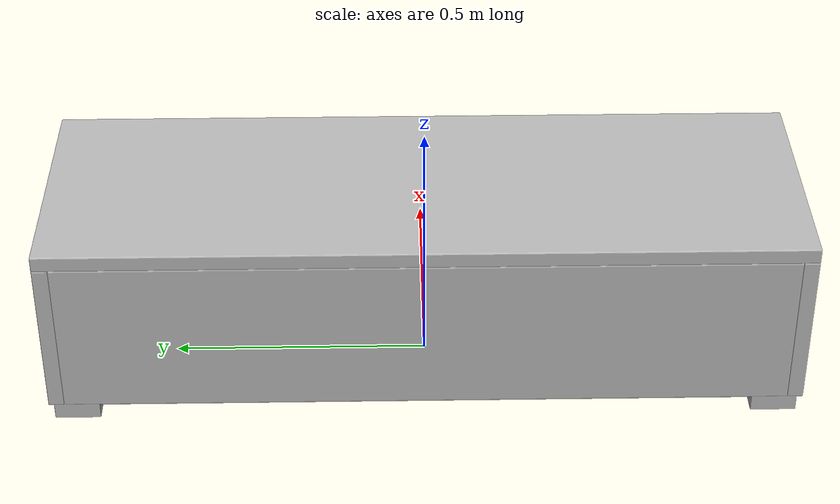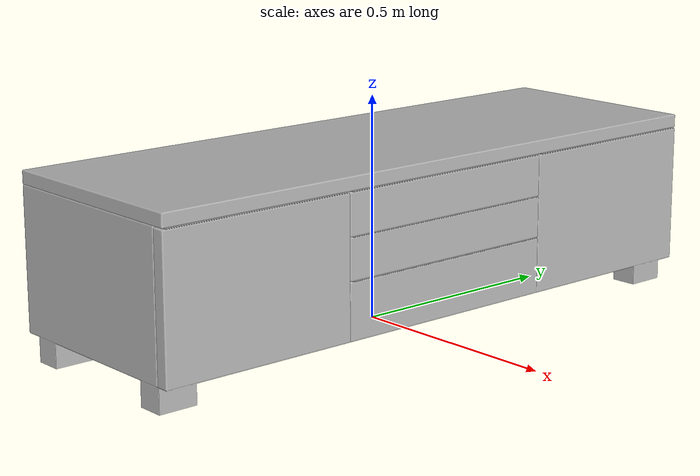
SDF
<?xml version='1.0'?>
<sdf version='1.4'>
  <model name='117'>
    <pose>0 0 0 0 0 0</pose>
    <static>true</static>
    <link name='link'>
      <collision name='collision'>
        <pose>0 0 0 0 0 0</pose>
        <geometry>
          <box>
            <size>0.491488 1.45 2</size>
          </box>
        </geometry>
      </collision>
      <visual name='visual'>
        <pose>0 0 0 0 0 0</pose>
        <geometry>
          <mesh><uri>model://117/117.dae</uri></mesh>
        </geometry>
      </visual>
    </link>
  </model>
</sdf>
